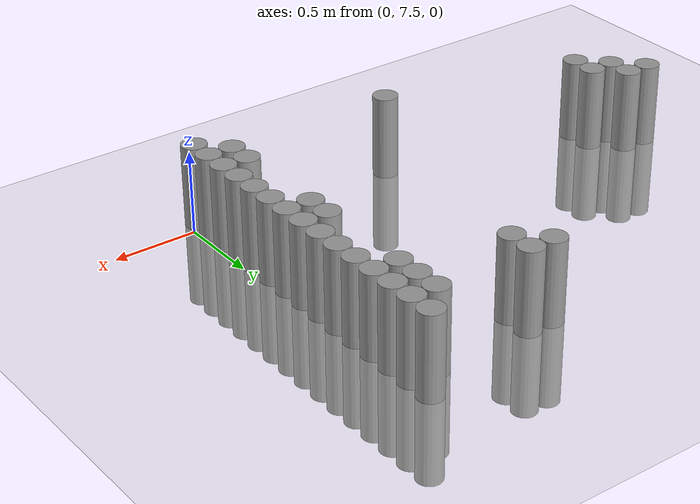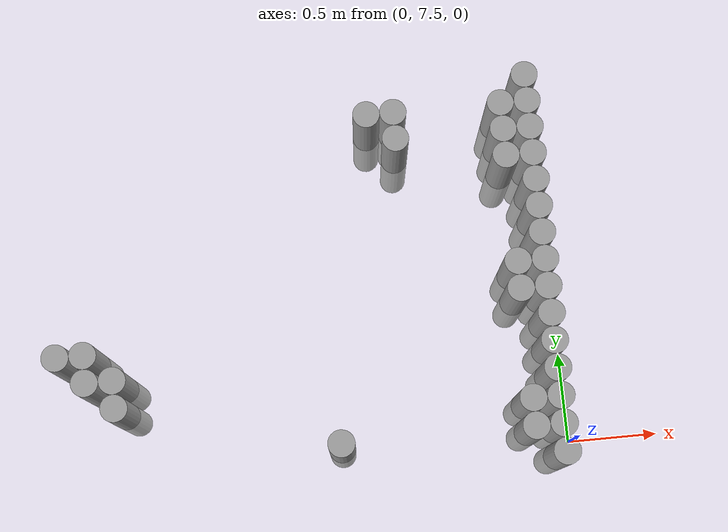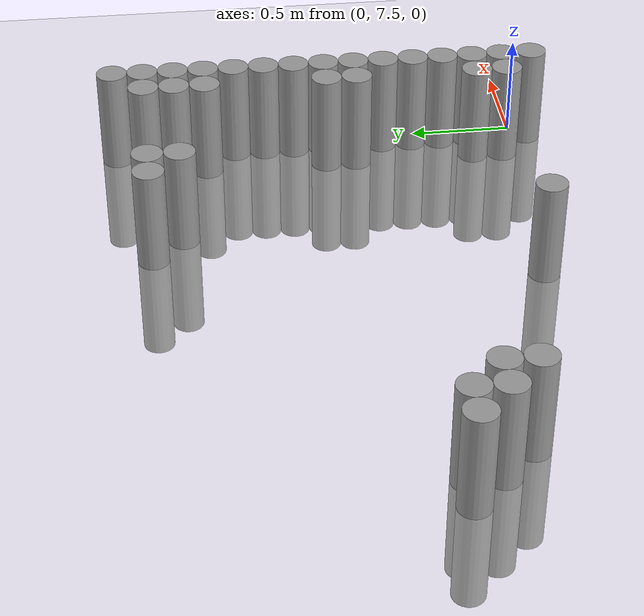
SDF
<sdf version="1.6">
 <world name="default">
  <model name="ground_plane">
   <static>1</static>
   <static>1</static>
   <link name="link">
    <collision name="collision">
     <geometry><plane><normal>0 0 1</normal><size>100 100</size></plane></geometry>
     <surface><friction><ode><mu>100</mu><mu2>50</mu2></ode></friction></surface>
    </collision>
    <visual name="visual">
     <cast_shadows>0</cast_shadows>
     <geometry><plane><normal>0 0 1</normal><size>100 100</size></plane></geometry>
     <material>
      <script><uri>file://media/materials/scripts/gazebo.material</uri><name>Gazebo/Grey</name></script>
     </material>
    </visual>
   </link>
  </model>
  <model name="unit_cylinder_170">
   <static>1</static>
   <pose>-2.775000 8.175000 0.000000 0.000000 0.000000 0.000000</pose>
   <link name="link">
    <inertial>
     <mass>1</mass>
     <inertia><ixx>0.145833</ixx><ixy>0</ixy><ixz>0</ixz><iyy>0.145833</iyy><iyz>0</iyz><izz>0.125</izz></inertia>
    </inertial>
    <collision name="collision">
     <geometry><cylinder><radius>0.075000</radius><length>1</length></cylinder></geometry>
    </collision>
    <visual name="visual">
     <geometry><cylinder><radius>0.075000</radius><length>1</length></cylinder></geometry>
     <material>
      <script><name>Gazebo/Grey</name><uri>file://media/materials/scripts/gazebo.material</uri></script>
     </material>
    </visual>
   </link>
  </model>
  <model name="unit_cylinder_175">
   <static>1</static>
   <pose>-2.625000 8.025000 0.000000 0.000000 0.000000 0.000000</pose>
   <link name="link">
    <inertial>
     <mass>1</mass>
     <inertia><ixx>0.145833</ixx><ixy>0</ixy><ixz>0</ixz><iyy>0.145833</iyy><iyz>0</iyz><izz>0.125</izz></inertia>
    </inertial>
    <collision name="collision">
     <geometry><cylinder><radius>0.075000</radius><length>1</length></cylinder></geometry>
    </collision>
    <visual name="visual">
     <geometry><cylinder><radius>0.075000</radius><length>1</length></cylinder></geometry>
     <material>
      <script><name>Gazebo/Grey</name><uri>file://media/materials/scripts/gazebo.material</uri></script>
     </material>
    </visual>
   </link>
  </model>
  <model name="unit_cylinder_176">
   <static>1</static>
   <pose>-2.625000 8.175000 0.000000 0.000000 0.000000 0.000000</pose>
   <link name="link">
    <inertial>
     <mass>1</mass>
     <inertia><ixx>0.145833</ixx><ixy>0</ixy><ixz>0</ixz><iyy>0.145833</iyy><iyz>0</iyz><izz>0.125</izz></inertia>
    </inertial>
    <collision name="collision">
     <geometry><cylinder><radius>0.075000</radius><length>1</length></cylinder></geometry>
    </collision>
    <visual name="visual">
     <geometry><cylinder><radius>0.075000</radius><length>1</length></cylinder></geometry>
     <material>
      <script><name>Gazebo/Grey</name><uri>file://media/materials/scripts/gazebo.material</uri></script>
     </material>
    </visual>
   </link>
  </model>
  <model name="unit_cylinder_181">
   <static>1</static>
   <pose>-2.475000 7.875000 0.000000 0.000000 0.000000 0.000000</pose>
   <link name="link">
    <inertial>
     <mass>1</mass>
     <inertia><ixx>0.145833</ixx><ixy>0</ixy><ixz>0</ixz><iyy>0.145833</iyy><iyz>0</iyz><izz>0.125</izz></inertia>
    </inertial>
    <collision name="collision">
     <geometry><cylinder><radius>0.075000</radius><length>1</length></cylinder></geometry>
    </collision>
    <visual name="visual">
     <geometry><cylinder><radius>0.075000</radius><length>1</length></cylinder></geometry>
     <material>
      <script><name>Gazebo/Grey</name><uri>file://media/materials/scripts/gazebo.material</uri></script>
     </material>
    </visual>
   </link>
  </model>
  <model name="unit_cylinder_182">
   <static>1</static>
   <pose>-2.475000 8.025000 0.000000 0.000000 0.000000 0.000000</pose>
   <link name="link">
    <inertial>
     <mass>1</mass>
     <inertia><ixx>0.145833</ixx><ixy>0</ixy><ixz>0</ixz><iyy>0.145833</iyy><iyz>0</iyz><izz>0.125</izz></inertia>
    </inertial>
    <collision name="collision">
     <geometry><cylinder><radius>0.075000</radius><length>1</length></cylinder></geometry>
    </collision>
    <visual name="visual">
     <geometry><cylinder><radius>0.075000</radius><length>1</length></cylinder></geometry>
     <material>
      <script><name>Gazebo/Grey</name><uri>file://media/materials/scripts/gazebo.material</uri></script>
     </material>
    </visual>
   </link>
  </model>
  <model name="unit_cylinder_191">
   <static>1</static>
   <pose>-1.275000 7.575000 0.000000 0.000000 0.000000 0.000000</pose>
   <link name="link">
    <inertial>
     <mass>1</mass>
     <inertia><ixx>0.145833</ixx><ixy>0</ixy><ixz>0</ixz><iyy>0.145833</iyy><iyz>0</iyz><izz>0.125</izz></inertia>
    </inertial>
    <collision name="collision">
     <geometry><cylinder><radius>0.075000</radius><length>1</length></cylinder></geometry>
    </collision>
    <visual name="visual">
     <geometry><cylinder><radius>0.075000</radius><length>1</length></cylinder></geometry>
     <material>
      <script><name>Gazebo/Grey</name><uri>file://media/materials/scripts/gazebo.material</uri></script>
     </material>
    </visual>
   </link>
  </model>
  <model name="unit_cylinder_194">
   <static>1</static>
   <pose>-0.975000 9.375000 0.000000 0.000000 0.000000 0.000000</pose>
   <link name="link">
    <inertial>
     <mass>1</mass>
     <inertia><ixx>0.145833</ixx><ixy>0</ixy><ixz>0</ixz><iyy>0.145833</iyy><iyz>0</iyz><izz>0.125</izz></inertia>
    </inertial>
    <collision name="collision">
     <geometry><cylinder><radius>0.075000</radius><length>1</length></cylinder></geometry>
    </collision>
    <visual name="visual">
     <geometry><cylinder><radius>0.075000</radius><length>1</length></cylinder></geometry>
     <material>
      <script><name>Gazebo/Grey</name><uri>file://media/materials/scripts/gazebo.material</uri></script>
     </material>
    </visual>
   </link>
  </model>
  <model name="unit_cylinder_197">
   <static>1</static>
   <pose>-0.825000 9.225000 0.000000 0.000000 0.000000 0.000000</pose>
   <link name="link">
    <inertial>
     <mass>1</mass>
     <inertia><ixx>0.145833</ixx><ixy>0</ixy><ixz>0</ixz><iyy>0.145833</iyy><iyz>0</iyz><izz>0.125</izz></inertia>
    </inertial>
    <collision name="collision">
     <geometry><cylinder><radius>0.075000</radius><length>1</length></cylinder></geometry>
    </collision>
    <visual name="visual">
     <geometry><cylinder><radius>0.075000</radius><length>1</length></cylinder></geometry>
     <material>
      <script><name>Gazebo/Grey</name><uri>file://media/materials/scripts/gazebo.material</uri></script>
     </material>
    </visual>
   </link>
  </model>
  <model name="unit_cylinder_198">
   <static>1</static>
   <pose>-0.825000 9.375000 0.000000 0.000000 0.000000 0.000000</pose>
   <link name="link">
    <inertial>
     <mass>1</mass>
     <inertia><ixx>0.145833</ixx><ixy>0</ixy><ixz>0</ixz><iyy>0.145833</iyy><iyz>0</iyz><izz>0.125</izz></inertia>
    </inertial>
    <collision name="collision">
     <geometry><cylinder><radius>0.075000</radius><length>1</length></cylinder></geometry>
    </collision>
    <visual name="visual">
     <geometry><cylinder><radius>0.075000</radius><length>1</length></cylinder></geometry>
     <material>
      <script><name>Gazebo/Grey</name><uri>file://media/materials/scripts/gazebo.material</uri></script>
     </material>
    </visual>
   </link>
  </model>
  <model name="unit_cylinder_204">
   <static>1</static>
   <pose>-0.225000 7.575000 0.000000 0.000000 0.000000 0.000000</pose>
   <link name="link">
    <inertial>
     <mass>1</mass>
     <inertia><ixx>0.145833</ixx><ixy>0</ixy><ixz>0</ixz><iyy>0.145833</iyy><iyz>0</iyz><izz>0.125</izz></inertia>
    </inertial>
    <collision name="collision">
     <geometry><cylinder><radius>0.075000</radius><length>1</length></cylinder></geometry>
    </collision>
    <visual name="visual">
     <geometry><cylinder><radius>0.075000</radius><length>1</length></cylinder></geometry>
     <material>
      <script><name>Gazebo/Grey</name><uri>file://media/materials/scripts/gazebo.material</uri></script>
     </material>
    </visual>
   </link>
  </model>
  <model name="unit_cylinder_205">
   <static>1</static>
   <pose>-0.225000 7.725000 0.000000 0.000000 0.000000 0.000000</pose>
   <link name="link">
    <inertial>
     <mass>1</mass>
     <inertia><ixx>0.145833</ixx><ixy>0</ixy><ixz>0</ixz><iyy>0.145833</iyy><iyz>0</iyz><izz>0.125</izz></inertia>
    </inertial>
    <collision name="collision">
     <geometry><cylinder><radius>0.075000</radius><length>1</length></cylinder></geometry>
    </collision>
    <visual name="visual">
     <geometry><cylinder><radius>0.075000</radius><length>1</length></cylinder></geometry>
     <material>
      <script><name>Gazebo/Grey</name><uri>file://media/materials/scripts/gazebo.material</uri></script>
     </material>
    </visual>
   </link>
  </model>
  <model name="unit_cylinder_206">
   <static>1</static>
   <pose>-0.225000 8.325000 0.000000 0.000000 0.000000 0.000000</pose>
   <link name="link">
    <inertial>
     <mass>1</mass>
     <inertia><ixx>0.145833</ixx><ixy>0</ixy><ixz>0</ixz><iyy>0.145833</iyy><iyz>0</iyz><izz>0.125</izz></inertia>
    </inertial>
    <collision name="collision">
     <geometry><cylinder><radius>0.075000</radius><length>1</length></cylinder></geometry>
    </collision>
    <visual name="visual">
     <geometry><cylinder><radius>0.075000</radius><length>1</length></cylinder></geometry>
     <material>
      <script><name>Gazebo/Grey</name><uri>file://media/materials/scripts/gazebo.material</uri></script>
     </material>
    </visual>
   </link>
  </model>
  <model name="unit_cylinder_207">
   <static>1</static>
   <pose>-0.225000 8.475000 0.000000 0.000000 0.000000 0.000000</pose>
   <link name="link">
    <inertial>
     <mass>1</mass>
     <inertia><ixx>0.145833</ixx><ixy>0</ixy><ixz>0</ixz><iyy>0.145833</iyy><iyz>0</iyz><izz>0.125</izz></inertia>
    </inertial>
    <collision name="collision">
     <geometry><cylinder><radius>0.075000</radius><length>1</length></cylinder></geometry>
    </collision>
    <visual name="visual">
     <geometry><cylinder><radius>0.075000</radius><length>1</length></cylinder></geometry>
     <material>
      <script><name>Gazebo/Grey</name><uri>file://media/materials/scripts/gazebo.material</uri></script>
     </material>
    </visual>
   </link>
  </model>
  <model name="unit_cylinder_208">
   <static>1</static>
   <pose>-0.225000 9.075000 0.000000 0.000000 0.000000 0.000000</pose>
   <link name="link">
    <inertial>
     <mass>1</mass>
     <inertia><ixx>0.145833</ixx><ixy>0</ixy><ixz>0</ixz><iyy>0.145833</iyy><iyz>0</iyz><izz>0.125</izz></inertia>
    </inertial>
    <collision name="collision">
     <geometry><cylinder><radius>0.075000</radius><length>1</length></cylinder></geometry>
    </collision>
    <visual name="visual">
     <geometry><cylinder><radius>0.075000</radius><length>1</length></cylinder></geometry>
     <material>
      <script><name>Gazebo/Grey</name><uri>file://media/materials/scripts/gazebo.material</uri></script>
     </material>
    </visual>
   </link>
  </model>
  <model name="unit_cylinder_209">
   <static>1</static>
   <pose>-0.225000 9.225000 0.000000 0.000000 0.000000 0.000000</pose>
   <link name="link">
    <inertial>
     <mass>1</mass>
     <inertia><ixx>0.145833</ixx><ixy>0</ixy><ixz>0</ixz><iyy>0.145833</iyy><iyz>0</iyz><izz>0.125</izz></inertia>
    </inertial>
    <collision name="collision">
     <geometry><cylinder><radius>0.075000</radius><length>1</length></cylinder></geometry>
    </collision>
    <visual name="visual">
     <geometry><cylinder><radius>0.075000</radius><length>1</length></cylinder></geometry>
     <material>
      <script><name>Gazebo/Grey</name><uri>file://media/materials/scripts/gazebo.material</uri></script>
     </material>
    </visual>
   </link>
  </model>
  <model name="unit_cylinder_210">
   <static>1</static>
   <pose>-0.225000 9.375000 0.000000 0.000000 0.000000 0.000000</pose>
   <link name="link">
    <inertial>
     <mass>1</mass>
     <inertia><ixx>0.145833</ixx><ixy>0</ixy><ixz>0</ixz><iyy>0.145833</iyy><iyz>0</iyz><izz>0.125</izz></inertia>
    </inertial>
    <collision name="collision">
     <geometry><cylinder><radius>0.075000</radius><length>1</length></cylinder></geometry>
    </collision>
    <visual name="visual">
     <geometry><cylinder><radius>0.075000</radius><length>1</length></cylinder></geometry>
     <material>
      <script><name>Gazebo/Grey</name><uri>file://media/materials/scripts/gazebo.material</uri></script>
     </material>
    </visual>
   </link>
  </model>
  <model name="unit_cylinder_226">
   <static>1</static>
   <pose>-0.075000 7.425000 0.000000 0.000000 0.000000 0.000000</pose>
   <link name="link">
    <inertial>
     <mass>1</mass>
     <inertia><ixx>0.145833</ixx><ixy>0</ixy><ixz>0</ixz><iyy>0.145833</iyy><iyz>0</iyz><izz>0.125</izz></inertia>
    </inertial>
    <collision name="collision">
     <geometry><cylinder><radius>0.075000</radius><length>1</length></cylinder></geometry>
    </collision>
    <visual name="visual">
     <geometry><cylinder><radius>0.075000</radius><length>1</length></cylinder></geometry>
     <material>
      <script><name>Gazebo/Grey</name><uri>file://media/materials/scripts/gazebo.material</uri></script>
     </material>
    </visual>
   </link>
  </model>
  <model name="unit_cylinder_227">
   <static>1</static>
   <pose>-0.075000 7.575000 0.000000 0.000000 0.000000 0.000000</pose>
   <link name="link">
    <inertial>
     <mass>1</mass>
     <inertia><ixx>0.145833</ixx><ixy>0</ixy><ixz>0</ixz><iyy>0.145833</iyy><iyz>0</iyz><izz>0.125</izz></inertia>
    </inertial>
    <collision name="collision">
     <geometry><cylinder><radius>0.075000</radius><length>1</length></cylinder></geometry>
    </collision>
    <visual name="visual">
     <geometry><cylinder><radius>0.075000</radius><length>1</length></cylinder></geometry>
     <material>
      <script><name>Gazebo/Grey</name><uri>file://media/materials/scripts/gazebo.material</uri></script>
     </material>
    </visual>
   </link>
  </model>
  <model name="unit_cylinder_228">
   <static>1</static>
   <pose>-0.075000 7.725000 0.000000 0.000000 0.000000 0.000000</pose>
   <link name="link">
    <inertial>
     <mass>1</mass>
     <inertia><ixx>0.145833</ixx><ixy>0</ixy><ixz>0</ixz><iyy>0.145833</iyy><iyz>0</iyz><izz>0.125</izz></inertia>
    </inertial>
    <collision name="collision">
     <geometry><cylinder><radius>0.075000</radius><length>1</length></cylinder></geometry>
    </collision>
    <visual name="visual">
     <geometry><cylinder><radius>0.075000</radius><length>1</length></cylinder></geometry>
     <material>
      <script><name>Gazebo/Grey</name><uri>file://media/materials/scripts/gazebo.material</uri></script>
     </material>
    </visual>
   </link>
  </model>
  <model name="unit_cylinder_229">
   <static>1</static>
   <pose>-0.075000 7.875000 0.000000 0.000000 0.000000 0.000000</pose>
   <link name="link">
    <inertial>
     <mass>1</mass>
     <inertia><ixx>0.145833</ixx><ixy>0</ixy><ixz>0</ixz><iyy>0.145833</iyy><iyz>0</iyz><izz>0.125</izz></inertia>
    </inertial>
    <collision name="collision">
     <geometry><cylinder><radius>0.075000</radius><length>1</length></cylinder></geometry>
    </collision>
    <visual name="visual">
     <geometry><cylinder><radius>0.075000</radius><length>1</length></cylinder></geometry>
     <material>
      <script><name>Gazebo/Grey</name><uri>file://media/materials/scripts/gazebo.material</uri></script>
     </material>
    </visual>
   </link>
  </model>
  <model name="unit_cylinder_230">
   <static>1</static>
   <pose>-0.075000 8.025000 0.000000 0.000000 0.000000 0.000000</pose>
   <link name="link">
    <inertial>
     <mass>1</mass>
     <inertia><ixx>0.145833</ixx><ixy>0</ixy><ixz>0</ixz><iyy>0.145833</iyy><iyz>0</iyz><izz>0.125</izz></inertia>
    </inertial>
    <collision name="collision">
     <geometry><cylinder><radius>0.075000</radius><length>1</length></cylinder></geometry>
    </collision>
    <visual name="visual">
     <geometry><cylinder><radius>0.075000</radius><length>1</length></cylinder></geometry>
     <material>
      <script><name>Gazebo/Grey</name><uri>file://media/materials/scripts/gazebo.material</uri></script>
     </material>
    </visual>
   </link>
  </model>
  <model name="unit_cylinder_231">
   <static>1</static>
   <pose>-0.075000 8.175000 0.000000 0.000000 0.000000 0.000000</pose>
   <link name="link">
    <inertial>
     <mass>1</mass>
     <inertia><ixx>0.145833</ixx><ixy>0</ixy><ixz>0</ixz><iyy>0.145833</iyy><iyz>0</iyz><izz>0.125</izz></inertia>
    </inertial>
    <collision name="collision">
     <geometry><cylinder><radius>0.075000</radius><length>1</length></cylinder></geometry>
    </collision>
    <visual name="visual">
     <geometry><cylinder><radius>0.075000</radius><length>1</length></cylinder></geometry>
     <material>
      <script><name>Gazebo/Grey</name><uri>file://media/materials/scripts/gazebo.material</uri></script>
     </material>
    </visual>
   </link>
  </model>
  <model name="unit_cylinder_232">
   <static>1</static>
   <pose>-0.075000 8.325000 0.000000 0.000000 0.000000 0.000000</pose>
   <link name="link">
    <inertial>
     <mass>1</mass>
     <inertia><ixx>0.145833</ixx><ixy>0</ixy><ixz>0</ixz><iyy>0.145833</iyy><iyz>0</iyz><izz>0.125</izz></inertia>
    </inertial>
    <collision name="collision">
     <geometry><cylinder><radius>0.075000</radius><length>1</length></cylinder></geometry>
    </collision>
    <visual name="visual">
     <geometry><cylinder><radius>0.075000</radius><length>1</length></cylinder></geometry>
     <material>
      <script><name>Gazebo/Grey</name><uri>file://media/materials/scripts/gazebo.material</uri></script>
     </material>
    </visual>
   </link>
  </model>
  <model name="unit_cylinder_233">
   <static>1</static>
   <pose>-0.075000 8.475000 0.000000 0.000000 0.000000 0.000000</pose>
   <link name="link">
    <inertial>
     <mass>1</mass>
     <inertia><ixx>0.145833</ixx><ixy>0</ixy><ixz>0</ixz><iyy>0.145833</iyy><iyz>0</iyz><izz>0.125</izz></inertia>
    </inertial>
    <collision name="collision">
     <geometry><cylinder><radius>0.075000</radius><length>1</length></cylinder></geometry>
    </collision>
    <visual name="visual">
     <geometry><cylinder><radius>0.075000</radius><length>1</length></cylinder></geometry>
     <material>
      <script><name>Gazebo/Grey</name><uri>file://media/materials/scripts/gazebo.material</uri></script>
     </material>
    </visual>
   </link>
  </model>
  <model name="unit_cylinder_234">
   <static>1</static>
   <pose>-0.075000 8.625000 0.000000 0.000000 0.000000 0.000000</pose>
   <link name="link">
    <inertial>
     <mass>1</mass>
     <inertia><ixx>0.145833</ixx><ixy>0</ixy><ixz>0</ixz><iyy>0.145833</iyy><iyz>0</iyz><izz>0.125</izz></inertia>
    </inertial>
    <collision name="collision">
     <geometry><cylinder><radius>0.075000</radius><length>1</length></cylinder></geometry>
    </collision>
    <visual name="visual">
     <geometry><cylinder><radius>0.075000</radius><length>1</length></cylinder></geometry>
     <material>
      <script><name>Gazebo/Grey</name><uri>file://media/materials/scripts/gazebo.material</uri></script>
     </material>
    </visual>
   </link>
  </model>
  <model name="unit_cylinder_235">
   <static>1</static>
   <pose>-0.075000 8.775000 0.000000 0.000000 0.000000 0.000000</pose>
   <link name="link">
    <inertial>
     <mass>1</mass>
     <inertia><ixx>0.145833</ixx><ixy>0</ixy><ixz>0</ixz><iyy>0.145833</iyy><iyz>0</iyz><izz>0.125</izz></inertia>
    </inertial>
    <collision name="collision">
     <geometry><cylinder><radius>0.075000</radius><length>1</length></cylinder></geometry>
    </collision>
    <visual name="visual">
     <geometry><cylinder><radius>0.075000</radius><length>1</length></cylinder></geometry>
     <material>
      <script><name>Gazebo/Grey</name><uri>file://media/materials/scripts/gazebo.material</uri></script>
     </material>
    </visual>
   </link>
  </model>
  <model name="unit_cylinder_236">
   <static>1</static>
   <pose>-0.075000 8.925000 0.000000 0.000000 0.000000 0.000000</pose>
   <link name="link">
    <inertial>
     <mass>1</mass>
     <inertia><ixx>0.145833</ixx><ixy>0</ixy><ixz>0</ixz><iyy>0.145833</iyy><iyz>0</iyz><izz>0.125</izz></inertia>
    </inertial>
    <collision name="collision">
     <geometry><cylinder><radius>0.075000</radius><length>1</length></cylinder></geometry>
    </collision>
    <visual name="visual">
     <geometry><cylinder><radius>0.075000</radius><length>1</length></cylinder></geometry>
     <material>
      <script><name>Gazebo/Grey</name><uri>file://media/materials/scripts/gazebo.material</uri></script>
     </material>
    </visual>
   </link>
  </model>
  <model name="unit_cylinder_237">
   <static>1</static>
   <pose>-0.075000 9.075000 0.000000 0.000000 0.000000 0.000000</pose>
   <link name="link">
    <inertial>
     <mass>1</mass>
     <inertia><ixx>0.145833</ixx><ixy>0</ixy><ixz>0</ixz><iyy>0.145833</iyy><iyz>0</iyz><izz>0.125</izz></inertia>
    </inertial>
    <collision name="collision">
     <geometry><cylinder><radius>0.075000</radius><length>1</length></cylinder></geometry>
    </collision>
    <visual name="visual">
     <geometry><cylinder><radius>0.075000</radius><length>1</length></cylinder></geometry>
     <material>
      <script><name>Gazebo/Grey</name><uri>file://media/materials/scripts/gazebo.material</uri></script>
     </material>
    </visual>
   </link>
  </model>
  <model name="unit_cylinder_238">
   <static>1</static>
   <pose>-0.075000 9.225000 0.000000 0.000000 0.000000 0.000000</pose>
   <link name="link">
    <inertial>
     <mass>1</mass>
     <inertia><ixx>0.145833</ixx><ixy>0</ixy><ixz>0</ixz><iyy>0.145833</iyy><iyz>0</iyz><izz>0.125</izz></inertia>
    </inertial>
    <collision name="collision">
     <geometry><cylinder><radius>0.075000</radius><length>1</length></cylinder></geometry>
    </collision>
    <visual name="visual">
     <geometry><cylinder><radius>0.075000</radius><length>1</length></cylinder></geometry>
     <material>
      <script><name>Gazebo/Grey</name><uri>file://media/materials/scripts/gazebo.material</uri></script>
     </material>
    </visual>
   </link>
  </model>
  <model name="unit_cylinder_239">
   <static>1</static>
   <pose>-0.075000 9.375000 0.000000 0.000000 0.000000 0.000000</pose>
   <link name="link">
    <inertial>
     <mass>1</mass>
     <inertia><ixx>0.145833</ixx><ixy>0</ixy><ixz>0</ixz><iyy>0.145833</iyy><iyz>0</iyz><izz>0.125</izz></inertia>
    </inertial>
    <collision name="collision">
     <geometry><cylinder><radius>0.075000</radius><length>1</length></cylinder></geometry>
    </collision>
    <visual name="visual">
     <geometry><cylinder><radius>0.075000</radius><length>1</length></cylinder></geometry>
     <material>
      <script><name>Gazebo/Grey</name><uri>file://media/materials/scripts/gazebo.material</uri></script>
     </material>
    </visual>
   </link>
  </model>
  <model name="unit_cylinder_240">
   <static>1</static>
   <pose>-0.075000 9.525000 0.000000 0.000000 0.000000 0.000000</pose>
   <link name="link">
    <inertial>
     <mass>1</mass>
     <inertia><ixx>0.145833</ixx><ixy>0</ixy><ixz>0</ixz><iyy>0.145833</iyy><iyz>0</iyz><izz>0.125</izz></inertia>
    </inertial>
    <collision name="collision">
     <geometry><cylinder><radius>0.075000</radius><length>1</length></cylinder></geometry>
    </collision>
    <visual name="visual">
     <geometry><cylinder><radius>0.075000</radius><length>1</length></cylinder></geometry>
     <material>
      <script><name>Gazebo/Grey</name><uri>file://media/materials/scripts/gazebo.material</uri></script>
     </material>
    </visual>
   </link>
  </model>
 </world>
</sdf>
